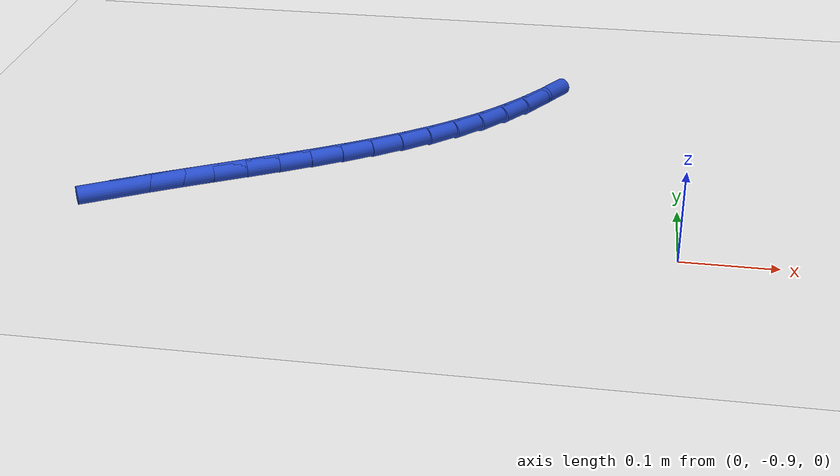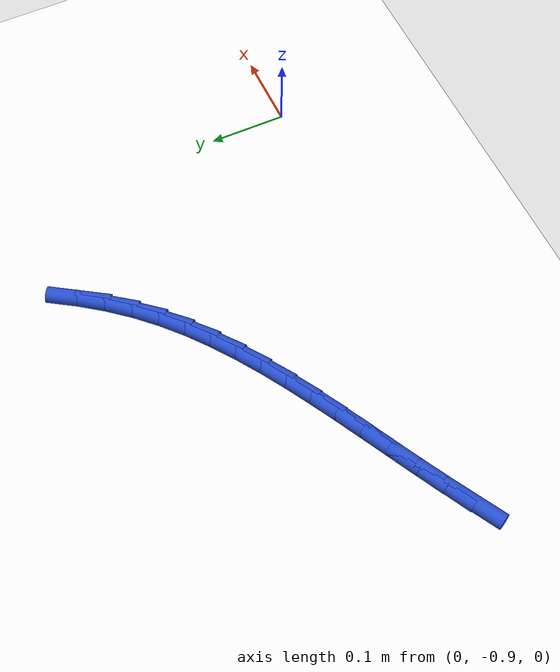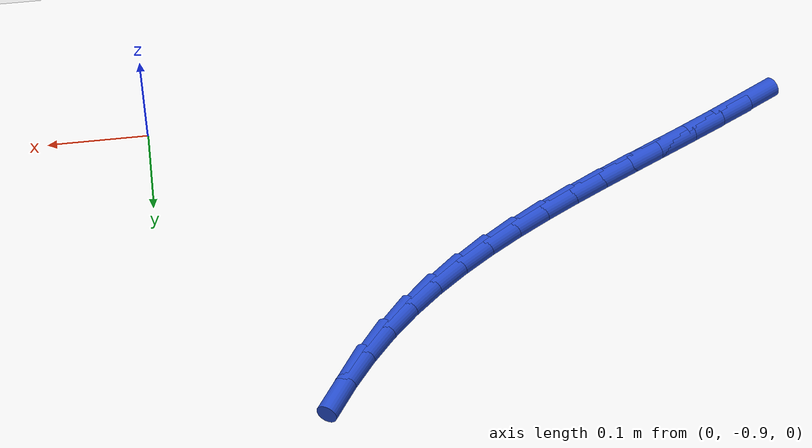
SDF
<sdf version="1.6">
 <world name="default">
  <model name="ground_plane">
   <static>1</static>
   <link name="link">
    <collision name="collision">
     <geometry><plane><normal>0 0 1</normal><size>100 100</size></plane></geometry>
     <surface><friction><ode><mu>100</mu><mu2>50</mu2></ode></friction></surface>
    </collision>
    <visual name="visual">
     <cast_shadows>0</cast_shadows>
     <geometry><plane><normal>0 0 1</normal><size>100 100</size></plane></geometry>
     <material>
      <script><uri>file://media/materials/scripts/gazebo.material</uri><name>Gazebo/WhiteGlow</name></script>
     </material>
    </visual>
   </link>
  </model>
  <model name="line">
   <link name="link_159">
    <pose>-0.5973826501425933 -0.8578167338935125 0.01 0 1.57 0.5116340409649651</pose>
    <collision name="collision">
     <geometry><cylinder><radius>0.01</radius><length>0.08</length></cylinder></geometry>
    </collision>
    <visual name="visual">
     <material>
      <script><name>Gazebo/Blue</name><uri>file://media/materials/scripts/gazebo.material</uri></script>
     </material>
     <geometry><cylinder><radius>0.01</radius><length>0.08</length></cylinder></geometry>
    </visual>
   </link>
   <link name="link_160">
    <pose>-0.5654554283046724 -0.8398894077967872 0.01 0 1.57 0.49379612114584764</pose>
    <collision name="collision">
     <geometry><cylinder><radius>0.01</radius><length>0.08</length></cylinder></geometry>
    </collision>
    <visual name="visual">
     <material>
      <script><name>Gazebo/Blue</name><uri>file://media/materials/scripts/gazebo.material</uri></script>
     </material>
     <geometry><cylinder><radius>0.01</radius><length>0.08</length></cylinder></geometry>
    </visual>
   </link>
   <link name="link_161">
    <pose>-0.5331123607322672 -0.822479969229892 0.01 0 1.57 0.4833728433346909</pose>
    <collision name="collision">
     <geometry><cylinder><radius>0.01</radius><length>0.08</length></cylinder></geometry>
    </collision>
    <visual name="visual">
     <material>
      <script><name>Gazebo/Blue</name><uri>file://media/materials/scripts/gazebo.material</uri></script>
     </material>
     <geometry><cylinder><radius>0.01</radius><length>0.08</length></cylinder></geometry>
    </visual>
   </link>
   <link name="link_162">
    <pose>-0.5005420665686905 -0.805383645761861 0.01 0 1.57 0.48027580623512656</pose>
    <collision name="collision">
     <geometry><cylinder><radius>0.01</radius><length>0.08</length></cylinder></geometry>
    </collision>
    <visual name="visual">
     <material>
      <script><name>Gazebo/Blue</name><uri>file://media/materials/scripts/gazebo.material</uri></script>
     </material>
     <geometry><cylinder><radius>0.01</radius><length>0.08</length></cylinder></geometry>
    </visual>
   </link>
   <link name="link_163">
    <pose>-0.4679331649572545 -0.7883956649617287 0.01 0 1.57 0.4844968501146804</pose>
    <collision name="collision">
     <geometry><cylinder><radius>0.01</radius><length>0.08</length></cylinder></geometry>
    </collision>
    <visual name="visual">
     <material>
      <script><name>Gazebo/Blue</name><uri>file://media/materials/scripts/gazebo.material</uri></script>
     </material>
     <geometry><cylinder><radius>0.01</radius><length>0.08</length></cylinder></geometry>
    </visual>
   </link>
   <link name="link_164">
    <pose>-0.4354742750412719 -0.77131125439853 0.01 0 1.57 0.4961131315038291</pose>
    <collision name="collision">
     <geometry><cylinder><radius>0.01</radius><length>0.08</length></cylinder></geometry>
    </collision>
    <visual name="visual">
     <material>
      <script><name>Gazebo/Blue</name><uri>file://media/materials/scripts/gazebo.material</uri></script>
     </material>
     <geometry><cylinder><radius>0.01</radius><length>0.08</length></cylinder></geometry>
    </visual>
   </link>
   <link name="link_165">
    <pose>-0.40335401596405496 -0.753925641641299 0.01 0 1.57 0.5152825959624938</pose>
    <collision name="collision">
     <geometry><cylinder><radius>0.01</radius><length>0.08</length></cylinder></geometry>
    </collision>
    <visual name="visual">
     <material>
      <script><name>Gazebo/Blue</name><uri>file://media/materials/scripts/gazebo.material</uri></script>
     </material>
     <geometry><cylinder><radius>0.01</radius><length>0.08</length></cylinder></geometry>
    </visual>
   </link>
   <link name="link_166">
    <pose>-0.37176100686891705 -0.7360340542590712 0.01 0 1.57 0.5422285633882471</pose>
    <collision name="collision">
     <geometry><cylinder><radius>0.01</radius><length>0.08</length></cylinder></geometry>
    </collision>
    <visual name="visual">
     <material>
      <script><name>Gazebo/Blue</name><uri>file://media/materials/scripts/gazebo.material</uri></script>
     </material>
     <geometry><cylinder><radius>0.01</radius><length>0.08</length></cylinder></geometry>
    </visual>
   </link>
   <link name="link_167">
    <pose>-0.34088386689916933 -0.7174317198208799 0.01 0 1.57 0.5772104510632502</pose>
    <collision name="collision">
     <geometry><cylinder><radius>0.01</radius><length>0.08</length></cylinder></geometry>
    </collision>
    <visual name="visual">
     <material>
      <script><name>Gazebo/Blue</name><uri>file://media/materials/scripts/gazebo.material</uri></script>
     </material>
     <geometry><cylinder><radius>0.01</radius><length>0.08</length></cylinder></geometry>
    </visual>
   </link>
   <link name="link_168">
    <pose>-0.3109112151981249 -0.6979138658957604 0.01 0 1.57 0.6204764387034326</pose>
    <collision name="collision">
     <geometry><cylinder><radius>0.01</radius><length>0.08</length></cylinder></geometry>
    </collision>
    <visual name="visual">
     <material>
      <script><name>Gazebo/Blue</name><uri>file://media/materials/scripts/gazebo.material</uri></script>
     </material>
     <geometry><cylinder><radius>0.01</radius><length>0.08</length></cylinder></geometry>
    </visual>
   </link>
   <link name="link_169">
    <pose>-0.28203167090909625 -0.6772757200527468 0.01 0 1.57 0.6721939451578632</pose>
    <collision name="collision">
     <geometry><cylinder><radius>0.01</radius><length>0.08</length></cylinder></geometry>
    </collision>
    <visual name="visual">
     <material>
      <script><name>Gazebo/Blue</name><uri>file://media/materials/scripts/gazebo.material</uri></script>
     </material>
     <geometry><cylinder><radius>0.01</radius><length>0.08</length></cylinder></geometry>
    </visual>
   </link>
   <link name="link_170">
    <pose>-0.2544338531753959 -0.6553125098608742 0.01 0 1.57 0.7323565170293119</pose>
    <collision name="collision">
     <geometry><cylinder><radius>0.01</radius><length>0.08</length></cylinder></geometry>
    </collision>
    <visual name="visual">
     <material>
      <script><name>Gazebo/Blue</name><uri>file://media/materials/scripts/gazebo.material</uri></script>
     </material>
     <geometry><cylinder><radius>0.01</radius><length>0.08</length></cylinder></geometry>
    </visual>
   </link>
   <link name="link_171">
    <pose>-0.22830638114033636 -0.6318194628891767 0.01 0 1.57 0.8006161841996874</pose>
    <collision name="collision">
     <geometry><cylinder><radius>0.01</radius><length>0.08</length></cylinder></geometry>
    </collision>
    <visual name="visual">
     <material>
      <script><name>Gazebo/Blue</name><uri>file://media/materials/scripts/gazebo.material</uri></script>
     </material>
     <geometry><cylinder><radius>0.01</radius><length>0.08</length></cylinder></geometry>
    </visual>
   </link>
   <link name="link_172">
    <pose>-0.20383670132098713 -0.606593454668992 0.01 0 1.57 0.8718053571980321</pose>
    <collision name="collision">
     <geometry><cylinder><radius>0.01</radius><length>0.08</length></cylinder></geometry>
    </collision>
    <visual name="visual">
     <material>
      <script><name>Gazebo/Blue</name><uri>file://media/materials/scripts/gazebo.material</uri></script>
     </material>
     <geometry><cylinder><radius>0.01</radius><length>0.08</length></cylinder></geometry>
    </visual>
   </link>
   <link name="link_173">
    <pose>-0.1811173335463004 -0.5795647669251394 0.01 0 1.57 0.9377285394602767</pose>
    <collision name="collision">
     <geometry><cylinder><radius>0.01</radius><length>0.08</length></cylinder></geometry>
    </collision>
    <visual name="visual">
     <material>
      <script><name>Gazebo/Blue</name><uri>file://media/materials/scripts/gazebo.material</uri></script>
     </material>
     <geometry><cylinder><radius>0.01</radius><length>0.08</length></cylinder></geometry>
    </visual>
   </link>
   <link name="link_174">
    <pose>-0.16007746663408948 -0.5508932202919551 0.01 0 1.57 0.9976577238304378</pose>
    <collision name="collision">
     <geometry><cylinder><radius>0.01</radius><length>0.08</length></cylinder></geometry>
    </collision>
    <visual name="visual">
     <material>
      <script><name>Gazebo/Blue</name><uri>file://media/materials/scripts/gazebo.material</uri></script>
     </material>
     <geometry><cylinder><radius>0.01</radius><length>0.08</length></cylinder></geometry>
    </visual>
   </link>
  </model>
 </world>
</sdf>
